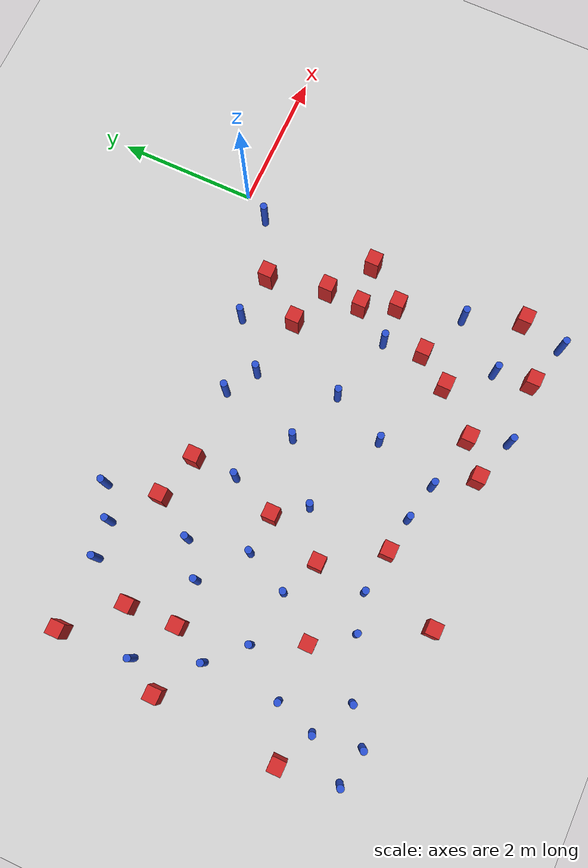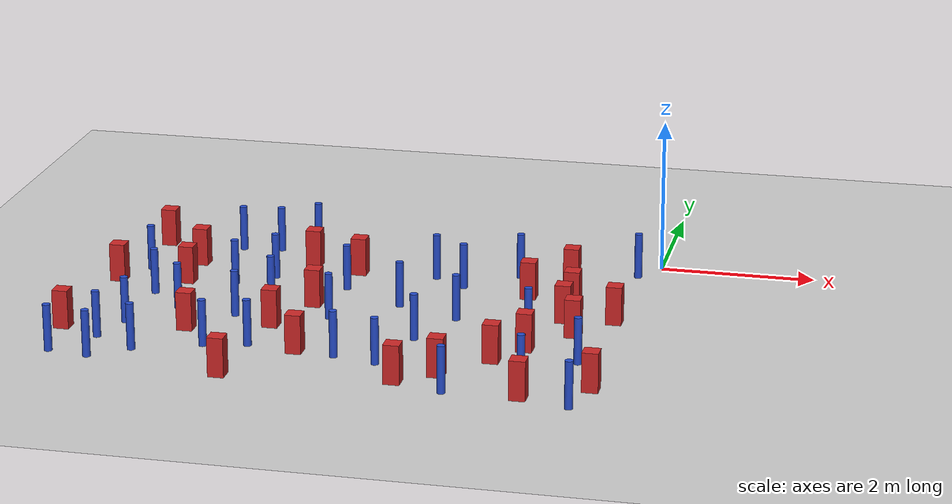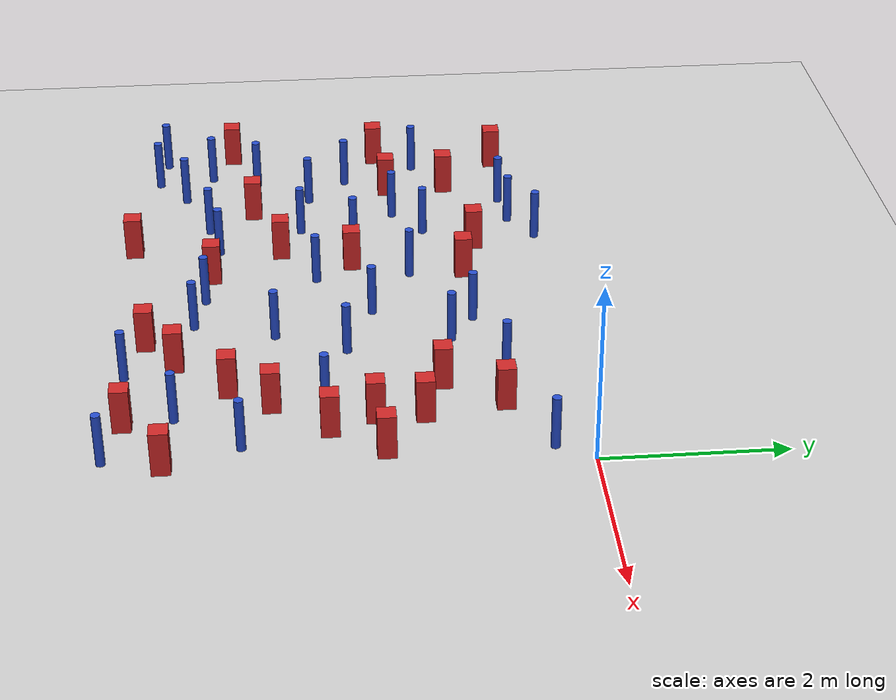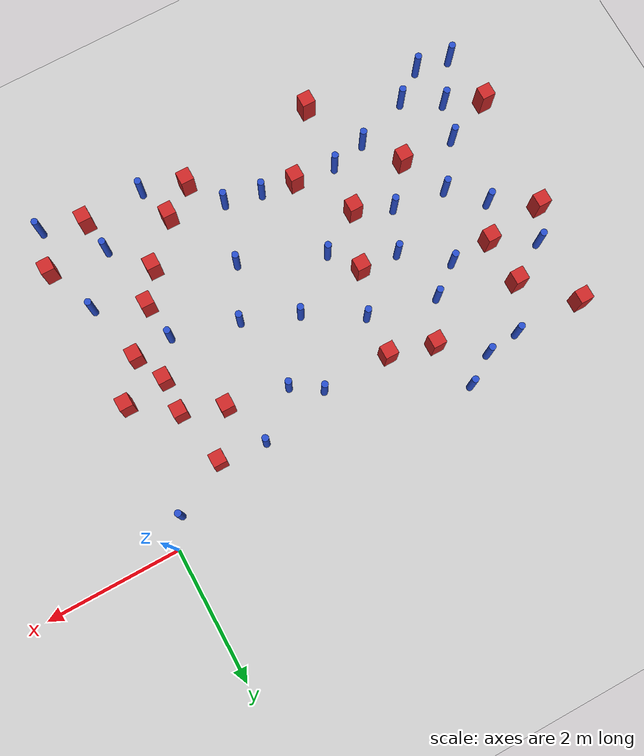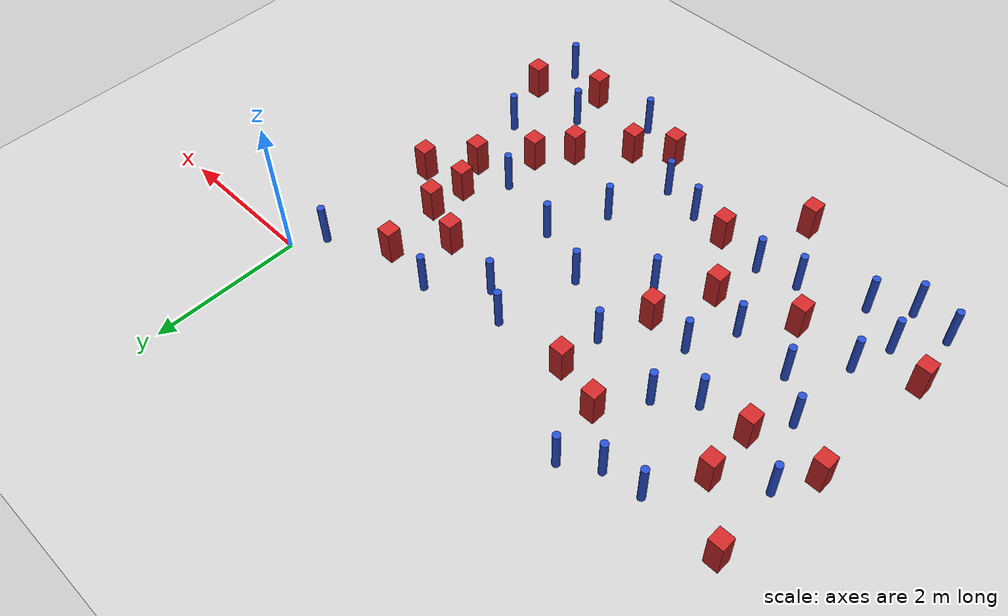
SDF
<sdf version="1.6">
 <world name="default">
  <model name="ground_plane">
   <static>1</static>
   <link name="link">
    <collision name="collision">
     <geometry><plane><normal>0 0 1</normal><size>100 100</size></plane></geometry>
     <surface><friction><ode><mu>100</mu><mu2>50</mu2></ode></friction></surface>
    </collision>
    <visual name="visual">
     <cast_shadows>0</cast_shadows>
     <geometry><plane><normal>0 0 1</normal><size>100 100</size></plane></geometry>
     <material>
      <ambient>1.0 1.0 1.0 1.0</ambient>
      <diffuse>0.8 0.8 0.8 1.0</diffuse>
      <specular>0.01 0.01 0.01 1.000000</specular>
     </material>
    </visual>
   </link>
  </model>
  <model name="pole_obstacle3">
   <static>true</static>
   <pose>-6.2229804464 -2.29862749571 -9.47619616065e-06 5.49618799738e-07 2.36310414051e-07 -1.55090534805e-07</pose>
   <link name="link">
    <pose>0 0 0.3 0 -0 0</pose>
    <inertial>
     <mass>1</mass>
     <inertia><ixx>0.145833</ixx><ixy>0</ixy><ixz>0</ixz><iyy>0.145833</iyy><iyz>0</iyz><izz>0.125</izz></inertia>
    </inertial>
    <collision name="collision">
     <geometry><cylinder><radius>0.05</radius><length>.6</length></cylinder></geometry>
    </collision>
    <visual name="visual">
     <geometry><cylinder><radius>0.05</radius><length>.6</length></cylinder></geometry>
     <material>
      <script><name>Gazebo/Blue</name><uri>file://media/materials/scripts/gazebo.material</uri></script>
     </material>
    </visual>
   </link>
  </model>
  <model name="pole_obstacle7">
   <static>true</static>
   <pose>-5.0682806766 -3.96761647848 -9.47619616065e-06 5.49618799737e-07 2.36310414056e-07 -1.55090534802e-07</pose>
   <link name="link">
    <pose>0 0 0.3 0 -0 0</pose>
    <inertial>
     <mass>1</mass>
     <inertia><ixx>0.145833</ixx><ixy>0</ixy><ixz>0</ixz><iyy>0.145833</iyy><iyz>0</iyz><izz>0.125</izz></inertia>
    </inertial>
    <collision name="collision">
     <geometry><cylinder><radius>0.05</radius><length>.6</length></cylinder></geometry>
    </collision>
    <visual name="visual">
     <geometry><cylinder><radius>0.05</radius><length>.6</length></cylinder></geometry>
     <material>
      <script><name>Gazebo/Blue</name><uri>file://media/materials/scripts/gazebo.material</uri></script>
     </material>
    </visual>
   </link>
  </model>
  <model name="pole_obstacle11">
   <static>true</static>
   <pose>-6.5538199711 -1.43021829592 -9.47619616065e-06 5.49618799738e-07 2.36310414071e-07 -1.55090534796e-07</pose>
   <link name="link">
    <pose>0 0 0.3 0 -0 0</pose>
    <inertial>
     <mass>1</mass>
     <inertia><ixx>0.145833</ixx><ixy>0</ixy><ixz>0</ixz><iyy>0.145833</iyy><iyz>0</iyz><izz>0.125</izz></inertia>
    </inertial>
    <collision name="collision">
     <geometry><cylinder><radius>0.05</radius><length>.6</length></cylinder></geometry>
    </collision>
    <visual name="visual">
     <geometry><cylinder><radius>0.05</radius><length>.6</length></cylinder></geometry>
     <material>
      <script><name>Gazebo/Blue</name><uri>file://media/materials/scripts/gazebo.material</uri></script>
     </material>
    </visual>
   </link>
  </model>
  <model name="pole_obstacle29">
   <static>true</static>
   <pose>-3.03656478073 -2.11130571083 -9.47619616065e-06 5.49618799737e-07 2.36310414051e-07 -1.55090534807e-07</pose>
   <link name="link">
    <pose>0 0 0.3 0 -0 0</pose>
    <inertial>
     <mass>1</mass>
     <inertia><ixx>0.145833</ixx><ixy>0</ixy><ixz>0</ixz><iyy>0.145833</iyy><iyz>0</iyz><izz>0.125</izz></inertia>
    </inertial>
    <collision name="collision">
     <geometry><cylinder><radius>0.05</radius><length>.6</length></cylinder></geometry>
    </collision>
    <visual name="visual">
     <geometry><cylinder><radius>0.05</radius><length>.6</length></cylinder></geometry>
     <material>
      <script><name>Gazebo/Blue</name><uri>file://media/materials/scripts/gazebo.material</uri></script>
     </material>
    </visual>
   </link>
  </model>
  <model name="pole_obstacle37">
   <static>true</static>
   <pose>-5.76734555641 -2.75890972721 -9.47619616065e-06 5.49618799738e-07 2.36310414051e-07 -1.55090534805e-07</pose>
   <link name="link">
    <pose>0 0 0.3 0 -0 0</pose>
    <inertial>
     <mass>1</mass>
     <inertia><ixx>0.145833</ixx><ixy>0</ixy><ixz>0</ixz><iyy>0.145833</iyy><iyz>0</iyz><izz>0.125</izz></inertia>
    </inertial>
    <collision name="collision">
     <geometry><cylinder><radius>0.05</radius><length>.6</length></cylinder></geometry>
    </collision>
    <visual name="visual">
     <geometry><cylinder><radius>0.05</radius><length>.6</length></cylinder></geometry>
     <material>
      <script><name>Gazebo/Blue</name><uri>file://media/materials/scripts/gazebo.material</uri></script>
     </material>
    </visual>
   </link>
  </model>
  <model name="square_post_obstacle38">
   <static>true</static>
   <pose>-2.51308995172 -4.62907168716 -6.11067671241e-07 -5.50515727128e-06 -8.79689657224e-07 2.37013304536e-05</pose>
   <link name="link">
    <pose>0 0 0.25 0 -0 0</pose>
    <inertial>
     <mass>100</mass>
     <inertia>
      <ixx>0.166667</ixx>
      <ixy>0</ixy>
      <ixz>0</ixz>
      <iyy>0.166667</iyy>
      <iyz>0</iyz>
      <izz>0.166667</izz>
     </inertia>
    </inertial>
    <collision name="collision"><geometry><box><size>.2 .2 .5</size></box></geometry></collision>
    <visual name="visual">
     <geometry><box><size>.2 .2 .5</size></box></geometry>
     <material>
      <script><name>Gazebo/Red</name><uri>file://media/materials/scripts/gazebo.material</uri></script>
     </material>
    </visual>
   </link>
  </model>
  <model name="pole_obstacle39">
   <static>true</static>
   <pose>-4.98152924909 -2.87349417401 -9.47619616065e-06 5.49618799738e-07 2.36310414051e-07 -1.55090534805e-07</pose>
   <link name="link">
    <pose>0 0 0.3 0 -0 0</pose>
    <inertial>
     <mass>1</mass>
     <inertia><ixx>0.145833</ixx><ixy>0</ixy><ixz>0</ixz><iyy>0.145833</iyy><iyz>0</iyz><izz>0.125</izz></inertia>
    </inertial>
    <collision name="collision">
     <geometry><cylinder><radius>0.05</radius><length>.6</length></cylinder></geometry>
    </collision>
    <visual name="visual">
     <geometry><cylinder><radius>0.05</radius><length>.6</length></cylinder></geometry>
     <material>
      <script><name>Gazebo/Blue</name><uri>file://media/materials/scripts/gazebo.material</uri></script>
     </material>
    </visual>
   </link>
  </model>
  <model name="square_post_obstacle41">
   <static>true</static>
   <pose>-0.964110540871 -4.80352036795 -6.11067671241e-07 -5.50515727128e-06 -8.79689657224e-07 2.37013304536e-05</pose>
   <link name="link">
    <pose>0 0 0.25 0 -0 0</pose>
    <inertial>
     <mass>100</mass>
     <inertia>
      <ixx>0.166667</ixx>
      <ixy>0</ixy>
      <ixz>0</ixz>
      <iyy>0.166667</iyy>
      <iyz>0</iyz>
      <izz>0.166667</izz>
     </inertia>
    </inertial>
    <collision name="collision"><geometry><box><size>.2 .2 .5</size></box></geometry></collision>
    <visual name="visual">
     <geometry><box><size>.2 .2 .5</size></box></geometry>
     <material>
      <script><name>Gazebo/Red</name><uri>file://media/materials/scripts/gazebo.material</uri></script>
     </material>
    </visual>
   </link>
  </model>
  <model name="pole_obstacle45">
   <static>true</static>
   <pose>-5.88642334787 -4.27151150032 -9.47619616065e-06 5.49618799737e-07 2.36310414037e-07 -1.55090534814e-07</pose>
   <link name="link">
    <pose>0 0 0.3 0 -0 0</pose>
    <inertial>
     <mass>1</mass>
     <inertia><ixx>0.145833</ixx><ixy>0</ixy><ixz>0</ixz><iyy>0.145833</iyy><iyz>0</iyz><izz>0.125</izz></inertia>
    </inertial>
    <collision name="collision">
     <geometry><cylinder><radius>0.05</radius><length>.6</length></cylinder></geometry>
    </collision>
    <visual name="visual">
     <geometry><cylinder><radius>0.05</radius><length>.6</length></cylinder></geometry>
     <material>
      <script><name>Gazebo/Blue</name><uri>file://media/materials/scripts/gazebo.material</uri></script>
     </material>
    </visual>
   </link>
  </model>
  <model name="pole_obstacle49">
   <static>true</static>
   <pose>-1.74861894565 -0.726756694505 -9.47619616065e-06 5.49618799737e-07 2.36310414065e-07 -1.55090534798e-07</pose>
   <link name="link">
    <pose>0 0 0.3 0 -0 0</pose>
    <inertial>
     <mass>1</mass>
     <inertia><ixx>0.145833</ixx><ixy>0</ixy><ixz>0</ixz><iyy>0.145833</iyy><iyz>0</iyz><izz>0.125</izz></inertia>
    </inertial>
    <collision name="collision">
     <geometry><cylinder><radius>0.05</radius><length>.6</length></cylinder></geometry>
    </collision>
    <visual name="visual">
     <geometry><cylinder><radius>0.05</radius><length>.6</length></cylinder></geometry>
     <material>
      <script><name>Gazebo/Blue</name><uri>file://media/materials/scripts/gazebo.material</uri></script>
     </material>
    </visual>
   </link>
  </model>
  <model name="square_post_obstacle49">
   <static>true</static>
   <pose>-0.179121991156 -4.37144597818 -6.11067671241e-07 -5.50515727128e-06 -8.79689657224e-07 2.37013304536e-05</pose>
   <link name="link">
    <pose>0 0 0.25 0 -0 0</pose>
    <inertial>
     <mass>100</mass>
     <inertia>
      <ixx>0.166667</ixx>
      <ixy>0</ixy>
      <ixz>0</ixz>
      <iyy>0.166667</iyy>
      <iyz>0</iyz>
      <izz>0.166667</izz>
     </inertia>
    </inertial>
    <collision name="collision"><geometry><box><size>.2 .2 .5</size></box></geometry></collision>
    <visual name="visual">
     <geometry><box><size>.2 .2 .5</size></box></geometry>
     <material>
      <script><name>Gazebo/Red</name><uri>file://media/materials/scripts/gazebo.material</uri></script>
     </material>
    </visual>
   </link>
  </model>
  <model name="square_post_obstacle50">
   <static>true</static>
   <pose>-0.911540510491 -2.18419605735 -6.11067671241e-07 -5.50515727128e-06 -8.79689657224e-07 2.37013304536e-05</pose>
   <link name="link">
    <pose>0 0 0.25 0 -0 0</pose>
    <inertial>
     <mass>100</mass>
     <inertia>
      <ixx>0.166667</ixx>
      <ixy>0</ixy>
      <ixz>0</ixz>
      <iyy>0.166667</iyy>
      <iyz>0</iyz>
      <izz>0.166667</izz>
     </inertia>
    </inertial>
    <collision name="collision"><geometry><box><size>.2 .2 .5</size></box></geometry></collision>
    <visual name="visual">
     <geometry><box><size>.2 .2 .5</size></box></geometry>
     <material>
      <script><name>Gazebo/Red</name><uri>file://media/materials/scripts/gazebo.material</uri></script>
     </material>
    </visual>
   </link>
  </model>
  <model name="square_post_obstacle52">
   <static>true</static>
   <pose>-6.61772138172 -0.403034680896 -6.11067671241e-07 -5.50515727128e-06 -8.79689657224e-07 2.37013304536e-05</pose>
   <link name="link">
    <pose>0 0 0.25 0 -0 0</pose>
    <inertial>
     <mass>100</mass>
     <inertia>
      <ixx>0.166667</ixx>
      <ixy>0</ixy>
      <ixz>0</ixz>
      <iyy>0.166667</iyy>
      <iyz>0</iyz>
      <izz>0.166667</izz>
     </inertia>
    </inertial>
    <collision name="collision"><geometry><box><size>.2 .2 .5</size></box></geometry></collision>
    <visual name="visual">
     <geometry><box><size>.2 .2 .5</size></box></geometry>
     <material>
      <script><name>Gazebo/Red</name><uri>file://media/materials/scripts/gazebo.material</uri></script>
     </material>
    </visual>
   </link>
  </model>
  <model name="square_post_obstacle61">
   <static>true</static>
   <pose>-4.11037787715 -2.29429734852 -6.11067671241e-07 -5.50515727128e-06 -8.79689657224e-07 2.37013304536e-05</pose>
   <link name="link">
    <pose>0 0 0.25 0 -0 0</pose>
    <inertial>
     <mass>100</mass>
     <inertia>
      <ixx>0.166667</ixx>
      <ixy>0</ixy>
      <ixz>0</ixz>
      <iyy>0.166667</iyy>
      <iyz>0</iyz>
      <izz>0.166667</izz>
     </inertia>
    </inertial>
    <collision name="collision"><geometry><box><size>.2 .2 .5</size></box></geometry></collision>
    <visual name="visual">
     <geometry><box><size>.2 .2 .5</size></box></geometry>
     <material>
      <script><name>Gazebo/Red</name><uri>file://media/materials/scripts/gazebo.material</uri></script>
     </material>
    </visual>
   </link>
  </model>
  <model name="pole_obstacle63">
   <static>true</static>
   <pose>-2.59092932446 -3.21006565112 -9.47619616065e-06 5.49618799737e-07 2.36310414051e-07 -1.55090534807e-07</pose>
   <link name="link">
    <pose>0 0 0.3 0 -0 0</pose>
    <inertial>
     <mass>1</mass>
     <inertia><ixx>0.145833</ixx><ixy>0</ixy><ixz>0</ixz><iyy>0.145833</iyy><iyz>0</iyz><izz>0.125</izz></inertia>
    </inertial>
    <collision name="collision">
     <geometry><cylinder><radius>0.05</radius><length>.6</length></cylinder></geometry>
    </collision>
    <visual name="visual">
     <geometry><cylinder><radius>0.05</radius><length>.6</length></cylinder></geometry>
     <material>
      <script><name>Gazebo/Blue</name><uri>file://media/materials/scripts/gazebo.material</uri></script>
     </material>
    </visual>
   </link>
  </model>
  <model name="square_post_obstacle70">
   <static>true</static>
   <pose>-1.05311522205 -0.81080862569 -6.11067671241e-07 -5.50515727128e-06 -8.79689657224e-07 2.37013304536e-05</pose>
   <link name="link">
    <pose>0 0 0.25 0 -0 0</pose>
    <inertial>
     <mass>100</mass>
     <inertia>
      <ixx>0.166667</ixx>
      <ixy>0</ixy>
      <ixz>0</ixz>
      <iyy>0.166667</iyy>
      <iyz>0</iyz>
      <izz>0.166667</izz>
     </inertia>
    </inertial>
    <collision name="collision"><geometry><box><size>.2 .2 .5</size></box></geometry></collision>
    <visual name="visual">
     <geometry><box><size>.2 .2 .5</size></box></geometry>
     <material>
      <script><name>Gazebo/Red</name><uri>file://media/materials/scripts/gazebo.material</uri></script>
     </material>
    </visual>
   </link>
  </model>
  <model name="pole_obstacle68">
   <static>true</static>
   <pose>-4.53440626312 -3.84466772299 -9.47619616065e-06 5.49618799738e-07 2.36310414051e-07 -1.55090534805e-07</pose>
   <link name="link">
    <pose>0 0 0.3 0 -0 0</pose>
    <inertial>
     <mass>1</mass>
     <inertia><ixx>0.145833</ixx><ixy>0</ixy><ixz>0</ixz><iyy>0.145833</iyy><iyz>0</iyz><izz>0.125</izz></inertia>
    </inertial>
    <collision name="collision">
     <geometry><cylinder><radius>0.05</radius><length>.6</length></cylinder></geometry>
    </collision>
    <visual name="visual">
     <geometry><cylinder><radius>0.05</radius><length>.6</length></cylinder></geometry>
     <material>
      <script><name>Gazebo/Blue</name><uri>file://media/materials/scripts/gazebo.material</uri></script>
     </material>
    </visual>
   </link>
  </model>
  <model name="pole_obstacle79">
   <static>true</static>
   <pose>-6.43627292767 -3.95054060754 -9.47619616065e-06 5.49618799737e-07 2.36310414056e-07 -1.55090534802e-07</pose>
   <link name="link">
    <pose>0 0 0.3 0 -0 0</pose>
    <inertial>
     <mass>1</mass>
     <inertia><ixx>0.145833</ixx><ixy>0</ixy><ixz>0</ixz><iyy>0.145833</iyy><iyz>0</iyz><izz>0.125</izz></inertia>
    </inertial>
    <collision name="collision">
     <geometry><cylinder><radius>0.05</radius><length>.6</length></cylinder></geometry>
    </collision>
    <visual name="visual">
     <geometry><cylinder><radius>0.05</radius><length>.6</length></cylinder></geometry>
     <material>
      <script><name>Gazebo/Blue</name><uri>file://media/materials/scripts/gazebo.material</uri></script>
     </material>
    </visual>
   </link>
  </model>
  <model name="pole_obstacle82">
   <static>true</static>
   <pose>-5.31254846 -1.75394855354 -9.47619616065e-06 5.49618799738e-07 2.36310414071e-07 -1.55090534796e-07</pose>
   <link name="link">
    <pose>0 0 0.3 0 -0 0</pose>
    <inertial>
     <mass>1</mass>
     <inertia><ixx>0.145833</ixx><ixy>0</ixy><ixz>0</ixz><iyy>0.145833</iyy><iyz>0</iyz><izz>0.125</izz></inertia>
    </inertial>
    <collision name="collision">
     <geometry><cylinder><radius>0.05</radius><length>.6</length></cylinder></geometry>
    </collision>
    <visual name="visual">
     <geometry><cylinder><radius>0.05</radius><length>.6</length></cylinder></geometry>
     <material>
      <script><name>Gazebo/Blue</name><uri>file://media/materials/scripts/gazebo.material</uri></script>
     </material>
    </visual>
   </link>
  </model>
  <model name="pole_obstacle83">
   <static>true</static>
   <pose>-5.59025373029 -0.416788049942 -9.47619616065e-06 5.49618799737e-07 2.36310414057e-07 -1.55090534802e-07</pose>
   <link name="link">
    <pose>0 0 0.3 0 -0 0</pose>
    <inertial>
     <mass>1</mass>
     <inertia><ixx>0.145833</ixx><ixy>0</ixy><ixz>0</ixz><iyy>0.145833</iyy><iyz>0</iyz><izz>0.125</izz></inertia>
    </inertial>
    <collision name="collision">
     <geometry><cylinder><radius>0.05</radius><length>.6</length></cylinder></geometry>
    </collision>
    <visual name="visual">
     <geometry><cylinder><radius>0.05</radius><length>.6</length></cylinder></geometry>
     <material>
      <script><name>Gazebo/Blue</name><uri>file://media/materials/scripts/gazebo.material</uri></script>
     </material>
    </visual>
   </link>
  </model>
  <model name="pole_obstacle92">
   <static>true</static>
   <pose>-2.23528534012 -2.42859169297 -9.47619616065e-06 5.49618799737e-07 2.36310414051e-07 -1.55090534807e-07</pose>
   <link name="link">
    <pose>0 0 0.3 0 -0 0</pose>
    <inertial>
     <mass>1</mass>
     <inertia><ixx>0.145833</ixx><ixy>0</ixy><ixz>0</ixz><iyy>0.145833</iyy><iyz>0</iyz><izz>0.125</izz></inertia>
    </inertial>
    <collision name="collision">
     <geometry><cylinder><radius>0.05</radius><length>.6</length></cylinder></geometry>
    </collision>
    <visual name="visual">
     <geometry><cylinder><radius>0.05</radius><length>.6</length></cylinder></geometry>
     <material>
      <script><name>Gazebo/Blue</name><uri>file://media/materials/scripts/gazebo.material</uri></script>
     </material>
    </visual>
   </link>
  </model>
  <model name="pole_obstacle93">
   <static>true</static>
   <pose>-1.88186380921 -4.83739743789 -9.47619616065e-06 5.49618799737e-07 2.36310414061e-07 -1.550905348e-07</pose>
   <link name="link">
    <pose>0 0 0.3 0 -0 0</pose>
    <inertial>
     <mass>1</mass>
     <inertia><ixx>0.145833</ixx><ixy>0</ixy><ixz>0</ixz><iyy>0.145833</iyy><iyz>0</iyz><izz>0.125</izz></inertia>
    </inertial>
    <collision name="collision">
     <geometry><cylinder><radius>0.05</radius><length>.6</length></cylinder></geometry>
    </collision>
    <visual name="visual">
     <geometry><cylinder><radius>0.05</radius><length>.6</length></cylinder></geometry>
     <material>
      <script><name>Gazebo/Blue</name><uri>file://media/materials/scripts/gazebo.material</uri></script>
     </material>
    </visual>
   </link>
  </model>
  <model name="pole_obstacle95">
   <static>true</static>
   <pose>-2.80995049967 -0.991274795487 -9.47619616065e-06 5.49618799737e-07 2.36310414076e-07 -1.55090534793e-07</pose>
   <link name="link">
    <pose>0 0 0.3 0 -0 0</pose>
    <inertial>
     <mass>1</mass>
     <inertia><ixx>0.145833</ixx><ixy>0</ixy><ixz>0</ixz><iyy>0.145833</iyy><iyz>0</iyz><izz>0.125</izz></inertia>
    </inertial>
    <collision name="collision">
     <geometry><cylinder><radius>0.05</radius><length>.6</length></cylinder></geometry>
    </collision>
    <visual name="visual">
     <geometry><cylinder><radius>0.05</radius><length>.6</length></cylinder></geometry>
     <material>
      <script><name>Gazebo/Blue</name><uri>file://media/materials/scripts/gazebo.material</uri></script>
     </material>
    </visual>
   </link>
  </model>
  <model name="square_post_obstacle86">
   <static>true</static>
   <pose>-4.44117381788 -3.11669265301 -6.11067671241e-07 -5.50515727128e-06 -8.79689657224e-07 2.37013304536e-05</pose>
   <link name="link">
    <pose>0 0 0.25 0 -0 0</pose>
    <inertial>
     <mass>100</mass>
     <inertia>
      <ixx>0.166667</ixx>
      <ixy>0</ixy>
      <ixz>0</ixz>
      <iyy>0.166667</iyy>
      <iyz>0</iyz>
      <izz>0.166667</izz>
     </inertia>
    </inertial>
    <collision name="collision"><geometry><box><size>.2 .2 .5</size></box></geometry></collision>
    <visual name="visual">
     <geometry><box><size>.2 .2 .5</size></box></geometry>
     <material>
      <script><name>Gazebo/Red</name><uri>file://media/materials/scripts/gazebo.material</uri></script>
     </material>
    </visual>
   </link>
  </model>
  <model name="square_post_obstacle92">
   <static>true</static>
   <pose>-6.83490240736 -1.90352779351 -6.11067671241e-07 -5.50515727128e-06 -8.79689657224e-07 2.37013304536e-05</pose>
   <link name="link">
    <pose>0 0 0.25 0 -0 0</pose>
    <inertial>
     <mass>100</mass>
     <inertia>
      <ixx>0.166667</ixx>
      <ixy>0</ixy>
      <ixz>0</ixz>
      <iyy>0.166667</iyy>
      <iyz>0</iyz>
      <izz>0.166667</izz>
     </inertia>
    </inertial>
    <collision name="collision"><geometry><box><size>.2 .2 .5</size></box></geometry></collision>
    <visual name="visual">
     <geometry><box><size>.2 .2 .5</size></box></geometry>
     <material>
      <script><name>Gazebo/Red</name><uri>file://media/materials/scripts/gazebo.material</uri></script>
     </material>
    </visual>
   </link>
  </model>
  <model name="pole_obstacle110">
   <static>true</static>
   <pose>-4.68913422124 -2.24942755903 -9.47619616065e-06 5.49618799738e-07 2.36310414051e-07 -1.55090534805e-07</pose>
   <link name="link">
    <pose>0 0 0.3 0 -0 0</pose>
    <inertial>
     <mass>1</mass>
     <inertia><ixx>0.145833</ixx><ixy>0</ixy><ixz>0</ixz><iyy>0.145833</iyy><iyz>0</iyz><izz>0.125</izz></inertia>
    </inertial>
    <collision name="collision">
     <geometry><cylinder><radius>0.05</radius><length>.6</length></cylinder></geometry>
    </collision>
    <visual name="visual">
     <geometry><cylinder><radius>0.05</radius><length>.6</length></cylinder></geometry>
     <material>
      <script><name>Gazebo/Blue</name><uri>file://media/materials/scripts/gazebo.material</uri></script>
     </material>
    </visual>
   </link>
  </model>
  <model name="square_post_obstacle102">
   <static>true</static>
   <pose>-5.94041337288 -1.79123020168 -6.11067671241e-07 -5.50515727128e-06 -8.79689657224e-07 2.37013304536e-05</pose>
   <link name="link">
    <pose>0 0 0.25 0 -0 0</pose>
    <inertial>
     <mass>100</mass>
     <inertia>
      <ixx>0.166667</ixx>
      <ixy>0</ixy>
      <ixz>0</ixz>
      <iyy>0.166667</iyy>
      <iyz>0</iyz>
      <izz>0.166667</izz>
     </inertia>
    </inertial>
    <collision name="collision"><geometry><box><size>.2 .2 .5</size></box></geometry></collision>
    <visual name="visual">
     <geometry><box><size>.2 .2 .5</size></box></geometry>
     <material>
      <script><name>Gazebo/Red</name><uri>file://media/materials/scripts/gazebo.material</uri></script>
     </material>
    </visual>
   </link>
  </model>
  <model name="square_post_obstacle106">
   <static>true</static>
   <pose>-0.27913022069 -2.10622933349 -6.11067671241e-07 -5.50515727128e-06 -8.79689657224e-07 2.37013304536e-05</pose>
   <link name="link">
    <pose>0 0 0.25 0 -0 0</pose>
    <inertial>
     <mass>100</mass>
     <inertia>
      <ixx>0.166667</ixx>
      <ixy>0</ixy>
      <ixz>0</ixz>
      <iyy>0.166667</iyy>
      <iyz>0</iyz>
      <izz>0.166667</izz>
     </inertia>
    </inertial>
    <collision name="collision"><geometry><box><size>.2 .2 .5</size></box></geometry></collision>
    <visual name="visual">
     <geometry><box><size>.2 .2 .5</size></box></geometry>
     <material>
      <script><name>Gazebo/Red</name><uri>file://media/materials/scripts/gazebo.material</uri></script>
     </material>
    </visual>
   </link>
  </model>
  <model name="square_post_obstacle107">
   <static>true</static>
   <pose>-1.49938980046 -1.43520343174 -6.11067671241e-07 -5.50515727128e-06 -8.79689657224e-07 2.37013304536e-05</pose>
   <link name="link">
    <pose>0 0 0.25 0 -0 0</pose>
    <inertial>
     <mass>100</mass>
     <inertia>
      <ixx>0.166667</ixx>
      <ixy>0</ixy>
      <ixz>0</ixz>
      <iyy>0.166667</iyy>
      <iyz>0</iyz>
      <izz>0.166667</izz>
     </inertia>
    </inertial>
    <collision name="collision"><geometry><box><size>.2 .2 .5</size></box></geometry></collision>
    <visual name="visual">
     <geometry><box><size>.2 .2 .5</size></box></geometry>
     <material>
      <script><name>Gazebo/Red</name><uri>file://media/materials/scripts/gazebo.material</uri></script>
     </material>
    </visual>
   </link>
  </model>
  <model name="square_post_obstacle108">
   <static>true</static>
   <pose>-6.96321551169 -3.70296465285 -6.11067671241e-07 -5.50515727128e-06 -8.79689657224e-07 2.37013304536e-05</pose>
   <link name="link">
    <pose>0 0 0.25 0 -0 0</pose>
    <inertial>
     <mass>100</mass>
     <inertia>
      <ixx>0.166667</ixx>
      <ixy>0</ixy>
      <ixz>0</ixz>
      <iyy>0.166667</iyy>
      <iyz>0</iyz>
      <izz>0.166667</izz>
     </inertia>
    </inertial>
    <collision name="collision"><geometry><box><size>.2 .2 .5</size></box></geometry></collision>
    <visual name="visual">
     <geometry><box><size>.2 .2 .5</size></box></geometry>
     <material>
      <script><name>Gazebo/Red</name><uri>file://media/materials/scripts/gazebo.material</uri></script>
     </material>
    </visual>
   </link>
  </model>
  <model name="square_post_obstacle115">
   <static>true</static>
   <pose>-0.701100443854 -2.6635151583 -6.11067671241e-07 -5.50515727128e-06 -8.79689657224e-07 2.37013304536e-05</pose>
   <link name="link">
    <pose>0 0 0.25 0 -0 0</pose>
    <inertial>
     <mass>100</mass>
     <inertia>
      <ixx>0.166667</ixx>
      <ixy>0</ixy>
      <ixz>0</ixz>
      <iyy>0.166667</iyy>
      <iyz>0</iyz>
      <izz>0.166667</izz>
     </inertia>
    </inertial>
    <collision name="collision"><geometry><box><size>.2 .2 .5</size></box></geometry></collision>
    <visual name="visual">
     <geometry><box><size>.2 .2 .5</size></box></geometry>
     <material>
      <script><name>Gazebo/Red</name><uri>file://media/materials/scripts/gazebo.material</uri></script>
     </material>
    </visual>
   </link>
  </model>
  <model name="pole_obstacle136">
   <static>true</static>
   <pose>-3.40961488721 -3.98904971708 -9.47619616065e-06 5.49618799737e-07 2.36310414046e-07 -1.5509053481e-07</pose>
   <link name="link">
    <pose>0 0 0.3 0 -0 0</pose>
    <inertial>
     <mass>1</mass>
     <inertia><ixx>0.145833</ixx><ixy>0</ixy><ixz>0</ixz><iyy>0.145833</iyy><iyz>0</iyz><izz>0.125</izz></inertia>
    </inertial>
    <collision name="collision">
     <geometry><cylinder><radius>0.05</radius><length>.6</length></cylinder></geometry>
    </collision>
    <visual name="visual">
     <geometry><cylinder><radius>0.05</radius><length>.6</length></cylinder></geometry>
     <material>
      <script><name>Gazebo/Blue</name><uri>file://media/materials/scripts/gazebo.material</uri></script>
     </material>
    </visual>
   </link>
  </model>
  <model name="pole_obstacle151">
   <static>true</static>
   <pose>-1.04029787076 -4.27729031408 -9.47619616065e-06 5.49618799737e-07 2.36310414062e-07 -1.55090534799e-07</pose>
   <link name="link">
    <pose>0 0 0.3 0 -0 0</pose>
    <inertial>
     <mass>1</mass>
     <inertia><ixx>0.145833</ixx><ixy>0</ixy><ixz>0</ixz><iyy>0.145833</iyy><iyz>0</iyz><izz>0.125</izz></inertia>
    </inertial>
    <collision name="collision">
     <geometry><cylinder><radius>0.05</radius><length>.6</length></cylinder></geometry>
    </collision>
    <visual name="visual">
     <geometry><cylinder><radius>0.05</radius><length>.6</length></cylinder></geometry>
     <material>
      <script><name>Gazebo/Blue</name><uri>file://media/materials/scripts/gazebo.material</uri></script>
     </material>
    </visual>
   </link>
  </model>
  <model name="pole_obstacle152">
   <static>true</static>
   <pose>-0.25430184699 -0.389581508851 -9.47619616065e-06 5.49618799737e-07 2.36310414073e-07 -1.55090534793e-07</pose>
   <link name="link">
    <pose>0 0 0.3 0 -0 0</pose>
    <inertial>
     <mass>1</mass>
     <inertia><ixx>0.145833</ixx><ixy>0</ixy><ixz>0</ixz><iyy>0.145833</iyy><iyz>0</iyz><izz>0.125</izz></inertia>
    </inertial>
    <collision name="collision">
     <geometry><cylinder><radius>0.05</radius><length>.6</length></cylinder></geometry>
    </collision>
    <visual name="visual">
     <geometry><cylinder><radius>0.05</radius><length>.6</length></cylinder></geometry>
     <material>
      <script><name>Gazebo/Blue</name><uri>file://media/materials/scripts/gazebo.material</uri></script>
     </material>
    </visual>
   </link>
  </model>
  <model name="square_post_obstacle151">
   <static>true</static>
   <pose>-5.44412130307 -3.44106418176 -6.11067671241e-07 -5.50515727128e-06 -8.79689657224e-07 2.37013304536e-05</pose>
   <link name="link">
    <pose>0 0 0.25 0 -0 0</pose>
    <inertial>
     <mass>100</mass>
     <inertia>
      <ixx>0.166667</ixx>
      <ixy>0</ixy>
      <ixz>0</ixz>
      <iyy>0.166667</iyy>
      <iyz>0</iyz>
      <izz>0.166667</izz>
     </inertia>
    </inertial>
    <collision name="collision"><geometry><box><size>.2 .2 .5</size></box></geometry></collision>
    <visual name="visual">
     <geometry><box><size>.2 .2 .5</size></box></geometry>
     <material>
      <script><name>Gazebo/Red</name><uri>file://media/materials/scripts/gazebo.material</uri></script>
     </material>
    </visual>
   </link>
  </model>
  <model name="pole_obstacle157">
   <static>true</static>
   <pose>-3.8481106643 -1.63397844308 -9.47619616065e-06 5.49618799737e-07 2.3631041403e-07 -1.5509053482e-07</pose>
   <link name="link">
    <pose>0 0 0.3 0 -0 0</pose>
    <inertial>
     <mass>1</mass>
     <inertia><ixx>0.145833</ixx><ixy>0</ixy><ixz>0</ixz><iyy>0.145833</iyy><iyz>0</iyz><izz>0.125</izz></inertia>
    </inertial>
    <collision name="collision">
     <geometry><cylinder><radius>0.05</radius><length>.6</length></cylinder></geometry>
    </collision>
    <visual name="visual">
     <geometry><cylinder><radius>0.05</radius><length>.6</length></cylinder></geometry>
     <material>
      <script><name>Gazebo/Blue</name><uri>file://media/materials/scripts/gazebo.material</uri></script>
     </material>
    </visual>
   </link>
  </model>
  <model name="square_post_obstacle155">
   <static>true</static>
   <pose>-3.83447786343 -1.01033061148 -6.11067671241e-07 -5.50515727128e-06 -8.79689657224e-07 2.37013304536e-05</pose>
   <link name="link">
    <pose>0 0 0.25 0 -0 0</pose>
    <inertial>
     <mass>100</mass>
     <inertia>
      <ixx>0.166667</ixx>
      <ixy>0</ixy>
      <ixz>0</ixz>
      <iyy>0.166667</iyy>
      <iyz>0</iyz>
      <izz>0.166667</izz>
     </inertia>
    </inertial>
    <collision name="collision"><geometry><box><size>.2 .2 .5</size></box></geometry></collision>
    <visual name="visual">
     <geometry><box><size>.2 .2 .5</size></box></geometry>
     <material>
      <script><name>Gazebo/Red</name><uri>file://media/materials/scripts/gazebo.material</uri></script>
     </material>
    </visual>
   </link>
  </model>
  <model name="pole_obstacle165">
   <static>true</static>
   <pose>-2.86338060981 -4.10848777006 -9.47619616065e-06 5.49618799738e-07 2.3631041406e-07 -1.55090534801e-07</pose>
   <link name="link">
    <pose>0 0 0.3 0 -0 0</pose>
    <inertial>
     <mass>1</mass>
     <inertia><ixx>0.145833</ixx><ixy>0</ixy><ixz>0</ixz><iyy>0.145833</iyy><iyz>0</iyz><izz>0.125</izz></inertia>
    </inertial>
    <collision name="collision">
     <geometry><cylinder><radius>0.05</radius><length>.6</length></cylinder></geometry>
    </collision>
    <visual name="visual">
     <geometry><cylinder><radius>0.05</radius><length>.6</length></cylinder></geometry>
     <material>
      <script><name>Gazebo/Blue</name><uri>file://media/materials/scripts/gazebo.material</uri></script>
     </material>
    </visual>
   </link>
  </model>
  <model name="pole_obstacle168">
   <static>true</static>
   <pose>-0.480504180733 -3.57768231341 -9.47619616065e-06 5.49618799737e-07 2.36310414073e-07 -1.55090534793e-07</pose>
   <link name="link">
    <pose>0 0 0.3 0 -0 0</pose>
    <inertial>
     <mass>1</mass>
     <inertia><ixx>0.145833</ixx><ixy>0</ixy><ixz>0</ixz><iyy>0.145833</iyy><iyz>0</iyz><izz>0.125</izz></inertia>
    </inertial>
    <collision name="collision">
     <geometry><cylinder><radius>0.05</radius><length>.6</length></cylinder></geometry>
    </collision>
    <visual name="visual">
     <geometry><cylinder><radius>0.05</radius><length>.6</length></cylinder></geometry>
     <material>
      <script><name>Gazebo/Blue</name><uri>file://media/materials/scripts/gazebo.material</uri></script>
     </material>
    </visual>
   </link>
  </model>
  <model name="pole_obstacle173">
   <static>true</static>
   <pose>-5.0827320647 -0.351862296504 -9.47619616065e-06 5.49618799737e-07 2.36310414057e-07 -1.55090534802e-07</pose>
   <link name="link">
    <pose>0 0 0.3 0 -0 0</pose>
    <inertial>
     <mass>1</mass>
     <inertia><ixx>0.145833</ixx><ixy>0</ixy><ixz>0</ixz><iyy>0.145833</iyy><iyz>0</iyz><izz>0.125</izz></inertia>
    </inertial>
    <collision name="collision">
     <geometry><cylinder><radius>0.05</radius><length>.6</length></cylinder></geometry>
    </collision>
    <visual name="visual">
     <geometry><cylinder><radius>0.05</radius><length>.6</length></cylinder></geometry>
     <material>
      <script><name>Gazebo/Blue</name><uri>file://media/materials/scripts/gazebo.material</uri></script>
     </material>
    </visual>
   </link>
  </model>
  <model name="square_post_obstacle164">
   <static>true</static>
   <pose>-1.51024739076 -3.71731818174 -6.11067671241e-07 -5.50515727128e-06 -8.79689657224e-07 2.37013304536e-05</pose>
   <link name="link">
    <pose>0 0 0.25 0 -0 0</pose>
    <inertial>
     <mass>100</mass>
     <inertia>
      <ixx>0.166667</ixx>
      <ixy>0</ixy>
      <ixz>0</ixz>
      <iyy>0.166667</iyy>
      <iyz>0</iyz>
      <izz>0.166667</izz>
     </inertia>
    </inertial>
    <collision name="collision"><geometry><box><size>.2 .2 .5</size></box></geometry></collision>
    <visual name="visual">
     <geometry><box><size>.2 .2 .5</size></box></geometry>
     <material>
      <script><name>Gazebo/Red</name><uri>file://media/materials/scripts/gazebo.material</uri></script>
     </material>
    </visual>
   </link>
  </model>
  <model name="square_post_obstacle167">
   <static>true</static>
   <pose>-4.6069537743 -4.84841071947 -6.11067671241e-07 -5.50515727128e-06 -8.79689657224e-07 2.37013304536e-05</pose>
   <link name="link">
    <pose>0 0 0.25 0 -0 0</pose>
    <inertial>
     <mass>100</mass>
     <inertia>
      <ixx>0.166667</ixx>
      <ixy>0</ixy>
      <ixz>0</ixz>
      <iyy>0.166667</iyy>
      <iyz>0</iyz>
      <izz>0.166667</izz>
     </inertia>
    </inertial>
    <collision name="collision"><geometry><box><size>.2 .2 .5</size></box></geometry></collision>
    <visual name="visual">
     <geometry><box><size>.2 .2 .5</size></box></geometry>
     <material>
      <script><name>Gazebo/Red</name><uri>file://media/materials/scripts/gazebo.material</uri></script>
     </material>
    </visual>
   </link>
  </model>
  <model name="pole_obstacle182">
   <static>true</static>
   <pose>-4.64933239381 -0.0716477690519 -9.47619616065e-06 5.49618799737e-07 2.36310414078e-07 -1.55090534791e-07</pose>
   <link name="link">
    <pose>0 0 0.3 0 -0 0</pose>
    <inertial>
     <mass>1</mass>
     <inertia><ixx>0.145833</ixx><ixy>0</ixy><ixz>0</ixz><iyy>0.145833</iyy><iyz>0</iyz><izz>0.125</izz></inertia>
    </inertial>
    <collision name="collision">
     <geometry><cylinder><radius>0.05</radius><length>.6</length></cylinder></geometry>
    </collision>
    <visual name="visual">
     <geometry><cylinder><radius>0.05</radius><length>.6</length></cylinder></geometry>
     <material>
      <script><name>Gazebo/Blue</name><uri>file://media/materials/scripts/gazebo.material</uri></script>
     </material>
    </visual>
   </link>
  </model>
  <model name="pole_obstacle185">
   <static>true</static>
   <pose>-6.25531151487 -3.3936499719 -9.47619616065e-06 5.49618799738e-07 2.36310414051e-07 -1.55090534805e-07</pose>
   <link name="link">
    <pose>0 0 0.3 0 -0 0</pose>
    <inertial>
     <mass>1</mass>
     <inertia><ixx>0.145833</ixx><ixy>0</ixy><ixz>0</ixz><iyy>0.145833</iyy><iyz>0</iyz><izz>0.125</izz></inertia>
    </inertial>
    <collision name="collision">
     <geometry><cylinder><radius>0.05</radius><length>.6</length></cylinder></geometry>
    </collision>
    <visual name="visual">
     <geometry><cylinder><radius>0.05</radius><length>.6</length></cylinder></geometry>
     <material>
      <script><name>Gazebo/Blue</name><uri>file://media/materials/scripts/gazebo.material</uri></script>
     </material>
    </visual>
   </link>
  </model>
  <model name="square_post_obstacle173">
   <static>true</static>
   <pose>-3.91395455897 -3.91665870228 -6.11067671241e-07 -5.50515727128e-06 -8.79689657224e-07 2.37013304536e-05</pose>
   <link name="link">
    <pose>0 0 0.25 0 -0 0</pose>
    <inertial>
     <mass>100</mass>
     <inertia>
      <ixx>0.166667</ixx>
      <ixy>0</ixy>
      <ixz>0</ixz>
      <iyy>0.166667</iyy>
      <iyz>0</iyz>
      <izz>0.166667</izz>
     </inertia>
    </inertial>
    <collision name="collision"><geometry><box><size>.2 .2 .5</size></box></geometry></collision>
    <visual name="visual">
     <geometry><box><size>.2 .2 .5</size></box></geometry>
     <material>
      <script><name>Gazebo/Red</name><uri>file://media/materials/scripts/gazebo.material</uri></script>
     </material>
    </visual>
   </link>
  </model>
  <model name="square_post_obstacle184">
   <static>true</static>
   <pose>-4.49398482843 -0.826627468505 -6.11067671241e-07 -5.50515727128e-06 -8.79689657224e-07 2.37013304536e-05</pose>
   <link name="link">
    <pose>0 0 0.25 0 -0 0</pose>
    <inertial>
     <mass>100</mass>
     <inertia>
      <ixx>0.166667</ixx>
      <ixy>0</ixy>
      <ixz>0</ixz>
      <iyy>0.166667</iyy>
      <iyz>0</iyz>
      <izz>0.166667</izz>
     </inertia>
    </inertial>
    <collision name="collision"><geometry><box><size>.2 .2 .5</size></box></geometry></collision>
    <visual name="visual">
     <geometry><box><size>.2 .2 .5</size></box></geometry>
     <material>
      <script><name>Gazebo/Red</name><uri>file://media/materials/scripts/gazebo.material</uri></script>
     </material>
    </visual>
   </link>
  </model>
  <model name="pole_obstacle194">
   <static>true</static>
   <pose>-1.26113275917 -2.69649180316 -9.47619616065e-06 5.49618799737e-07 2.36310414062e-07 -1.55090534798e-07</pose>
   <link name="link">
    <pose>0 0 0.3 0 -0 0</pose>
    <inertial>
     <mass>1</mass>
     <inertia><ixx>0.145833</ixx><ixy>0</ixy><ixz>0</ixz><iyy>0.145833</iyy><iyz>0</iyz><izz>0.125</izz></inertia>
    </inertial>
    <collision name="collision">
     <geometry><cylinder><radius>0.05</radius><length>.6</length></cylinder></geometry>
    </collision>
    <visual name="visual">
     <geometry><cylinder><radius>0.05</radius><length>.6</length></cylinder></geometry>
     <material>
      <script><name>Gazebo/Blue</name><uri>file://media/materials/scripts/gazebo.material</uri></script>
     </material>
    </visual>
   </link>
  </model>
  <model name="square_post_obstacle190">
   <static>true</static>
   <pose>-5.97036016423 -1.07252668056 -6.11067671241e-07 -5.50515727128e-06 -8.79689657224e-07 2.37013304536e-05</pose>
   <link name="link">
    <pose>0 0 0.25 0 -0 0</pose>
    <inertial>
     <mass>100</mass>
     <inertia>
      <ixx>0.166667</ixx>
      <ixy>0</ixy>
      <ixz>0</ixz>
      <iyy>0.166667</iyy>
      <iyz>0</iyz>
      <izz>0.166667</izz>
     </inertia>
    </inertial>
    <collision name="collision"><geometry><box><size>.2 .2 .5</size></box></geometry></collision>
    <visual name="visual">
     <geometry><box><size>.2 .2 .5</size></box></geometry>
     <material>
      <script><name>Gazebo/Red</name><uri>file://media/materials/scripts/gazebo.material</uri></script>
     </material>
    </visual>
   </link>
  </model>
  <model name="square_post_obstacle192">
   <static>true</static>
   <pose>-1.19007314624 -3.2622140085 -6.11067671241e-07 -5.50515727128e-06 -8.79689657224e-07 2.37013304536e-05</pose>
   <link name="link">
    <pose>0 0 0.25 0 -0 0</pose>
    <inertial>
     <mass>100</mass>
     <inertia>
      <ixx>0.166667</ixx>
      <ixy>0</ixy>
      <ixz>0</ixz>
      <iyy>0.166667</iyy>
      <iyz>0</iyz>
      <izz>0.166667</izz>
     </inertia>
    </inertial>
    <collision name="collision"><geometry><box><size>.2 .2 .5</size></box></geometry></collision>
    <visual name="visual">
     <geometry><box><size>.2 .2 .5</size></box></geometry>
     <material>
      <script><name>Gazebo/Red</name><uri>file://media/materials/scripts/gazebo.material</uri></script>
     </material>
    </visual>
   </link>
  </model>
  <model name="pole_obstacle200">
   <static>true</static>
   <pose>-3.80389697622 -2.71865758017 -9.47619616065e-06 5.49618799737e-07 2.36310414051e-07 -1.55090534807e-07</pose>
   <link name="link">
    <pose>0 0 0.3 0 -0 0</pose>
    <inertial>
     <mass>1</mass>
     <inertia><ixx>0.145833</ixx><ixy>0</ixy><ixz>0</ixz><iyy>0.145833</iyy><iyz>0</iyz><izz>0.125</izz></inertia>
    </inertial>
    <collision name="collision">
     <geometry><cylinder><radius>0.05</radius><length>.6</length></cylinder></geometry>
    </collision>
    <visual name="visual">
     <geometry><cylinder><radius>0.05</radius><length>.6</length></cylinder></geometry>
     <material>
      <script><name>Gazebo/Blue</name><uri>file://media/materials/scripts/gazebo.material</uri></script>
     </material>
    </visual>
   </link>
  </model>
  <model name="pole_obstacle210">
   <static>true</static>
   <pose>-4.86464859205 -1.40786361412 -9.47619616065e-06 5.49618799738e-07 2.36310414071e-07 -1.55090534796e-07</pose>
   <link name="link">
    <pose>0 0 0.3 0 -0 0</pose>
    <inertial>
     <mass>1</mass>
     <inertia><ixx>0.145833</ixx><ixy>0</ixy><ixz>0</ixz><iyy>0.145833</iyy><iyz>0</iyz><izz>0.125</izz></inertia>
    </inertial>
    <collision name="collision">
     <geometry><cylinder><radius>0.05</radius><length>.6</length></cylinder></geometry>
    </collision>
    <visual name="visual">
     <geometry><cylinder><radius>0.05</radius><length>.6</length></cylinder></geometry>
     <material>
      <script><name>Gazebo/Blue</name><uri>file://media/materials/scripts/gazebo.material</uri></script>
     </material>
    </visual>
   </link>
  </model>
  <model name="pole_obstacle212">
   <static>true</static>
   <pose>-0.334300576487 -4.98665492242 -9.47619616065e-06 5.49618799737e-07 2.36310414065e-07 -1.55090534796e-07</pose>
   <link name="link">
    <pose>0 0 0.3 0 -0 0</pose>
    <inertial>
     <mass>1</mass>
     <inertia><ixx>0.145833</ixx><ixy>0</ixy><ixz>0</ixz><iyy>0.145833</iyy><iyz>0</iyz><izz>0.125</izz></inertia>
    </inertial>
    <collision name="collision">
     <geometry><cylinder><radius>0.05</radius><length>.6</length></cylinder></geometry>
    </collision>
    <visual name="visual">
     <geometry><cylinder><radius>0.05</radius><length>.6</length></cylinder></geometry>
     <material>
      <script><name>Gazebo/Blue</name><uri>file://media/materials/scripts/gazebo.material</uri></script>
     </material>
    </visual>
   </link>
  </model>
  <model name="pole_obstacle217">
   <static>true</static>
   <pose>-2.39227123045 -1.26685345057 -9.47619616065e-06 5.49618799737e-07 2.36310414072e-07 -1.55090534793e-07</pose>
   <link name="link">
    <pose>0 0 0.3 0 -0 0</pose>
    <inertial>
     <mass>1</mass>
     <inertia><ixx>0.145833</ixx><ixy>0</ixy><ixz>0</ixz><iyy>0.145833</iyy><iyz>0</iyz><izz>0.125</izz></inertia>
    </inertial>
    <collision name="collision">
     <geometry><cylinder><radius>0.05</radius><length>.6</length></cylinder></geometry>
    </collision>
    <visual name="visual">
     <geometry><cylinder><radius>0.05</radius><length>.6</length></cylinder></geometry>
     <material>
      <script><name>Gazebo/Blue</name><uri>file://media/materials/scripts/gazebo.material</uri></script>
     </material>
    </visual>
   </link>
  </model>
  <model name="pole_obstacle220">
   <static>true</static>
   <pose>-6.85829726508 -4.5270882589 -9.47619616065e-06 5.49618799737e-07 2.36310414037e-07 -1.55090534814e-07</pose>
   <link name="link">
    <pose>0 0 0.3 0 -0 0</pose>
    <inertial>
     <mass>1</mass>
     <inertia><ixx>0.145833</ixx><ixy>0</ixy><ixz>0</ixz><iyy>0.145833</iyy><iyz>0</iyz><izz>0.125</izz></inertia>
    </inertial>
    <collision name="collision">
     <geometry><cylinder><radius>0.05</radius><length>.6</length></cylinder></geometry>
    </collision>
    <visual name="visual">
     <geometry><cylinder><radius>0.05</radius><length>.6</length></cylinder></geometry>
     <material>
      <script><name>Gazebo/Blue</name><uri>file://media/materials/scripts/gazebo.material</uri></script>
     </material>
    </visual>
   </link>
  </model>
  <model name="pole_obstacle232">
   <static>true</static>
   <pose>-6.3385565366 -4.61021735924 -9.47619616065e-06 5.49618799737e-07 2.36310414037e-07 -1.55090534814e-07</pose>
   <link name="link">
    <pose>0 0 0.3 0 -0 0</pose>
    <inertial>
     <mass>1</mass>
     <inertia><ixx>0.145833</ixx><ixy>0</ixy><ixz>0</ixz><iyy>0.145833</iyy><iyz>0</iyz><izz>0.125</izz></inertia>
    </inertial>
    <collision name="collision">
     <geometry><cylinder><radius>0.05</radius><length>.6</length></cylinder></geometry>
    </collision>
    <visual name="visual">
     <geometry><cylinder><radius>0.05</radius><length>.6</length></cylinder></geometry>
     <material>
      <script><name>Gazebo/Blue</name><uri>file://media/materials/scripts/gazebo.material</uri></script>
     </material>
    </visual>
   </link>
  </model>
  <model name="square_post_obstacle211">
   <static>true</static>
   <pose>-2.0569500498 -4.29931002312 -6.11067671241e-07 -5.50515727128e-06 -8.79689657224e-07 2.37013304536e-05</pose>
   <link name="link">
    <pose>0 0 0.25 0 -0 0</pose>
    <inertial>
     <mass>100</mass>
     <inertia>
      <ixx>0.166667</ixx>
      <ixy>0</ixy>
      <ixz>0</ixz>
      <iyy>0.166667</iyy>
      <iyz>0</iyz>
      <izz>0.166667</izz>
     </inertia>
    </inertial>
    <collision name="collision"><geometry><box><size>.2 .2 .5</size></box></geometry></collision>
    <visual name="visual">
     <geometry><box><size>.2 .2 .5</size></box></geometry>
     <material>
      <script><name>Gazebo/Red</name><uri>file://media/materials/scripts/gazebo.material</uri></script>
     </material>
    </visual>
   </link>
  </model>
  <model name="square_post_obstacle219">
   <static>true</static>
   <pose>-0.889286049797 -1.66925002312 -6.11067671241e-07 -5.50515727128e-06 -8.79689657224e-07 2.37013304536e-05</pose>
   <link name="link">
    <pose>0 0 0.25 0 -0 0</pose>
    <inertial>
     <mass>100</mass>
     <inertia>
      <ixx>0.166667</ixx>
      <ixy>0</ixy>
      <ixz>0</ixz>
      <iyy>0.166667</iyy>
      <iyz>0</iyz>
      <izz>0.166667</izz>
     </inertia>
    </inertial>
    <collision name="collision"><geometry><box><size>.2 .2 .5</size></box></geometry></collision>
    <visual name="visual">
     <geometry><box><size>.2 .2 .5</size></box></geometry>
     <material>
      <script><name>Gazebo/Red</name><uri>file://media/materials/scripts/gazebo.material</uri></script>
     </material>
    </visual>
   </link>
  </model>
 </world>
</sdf>
